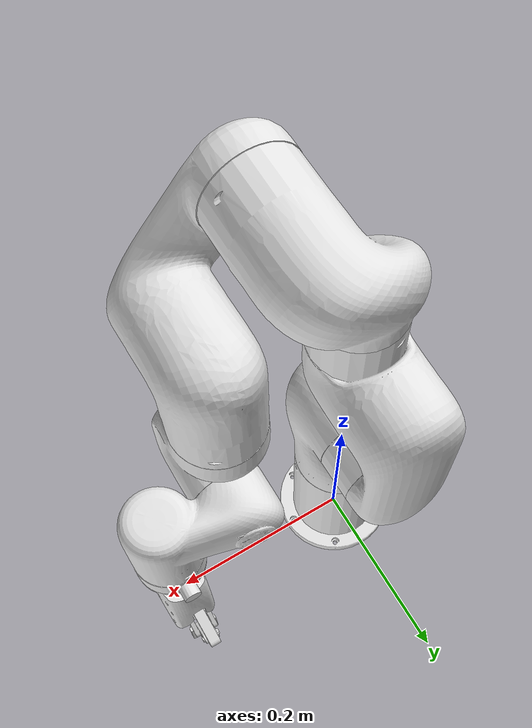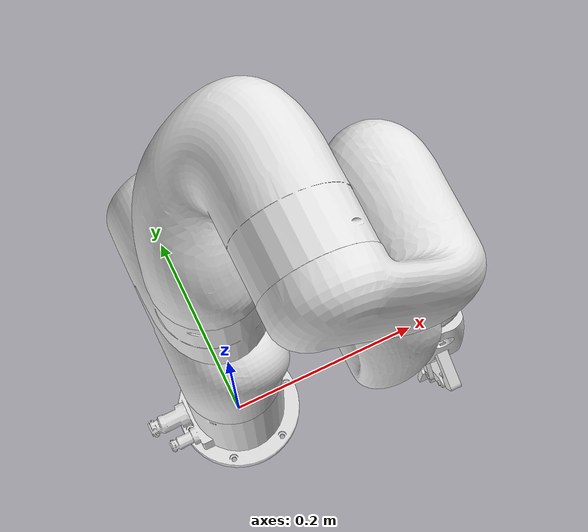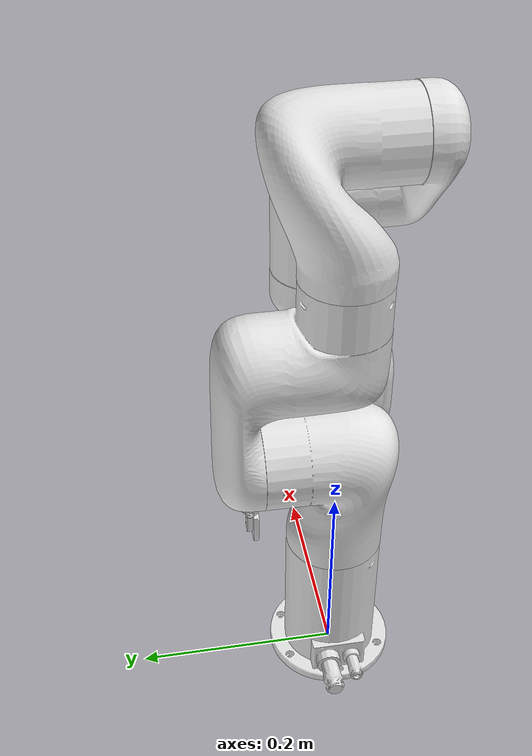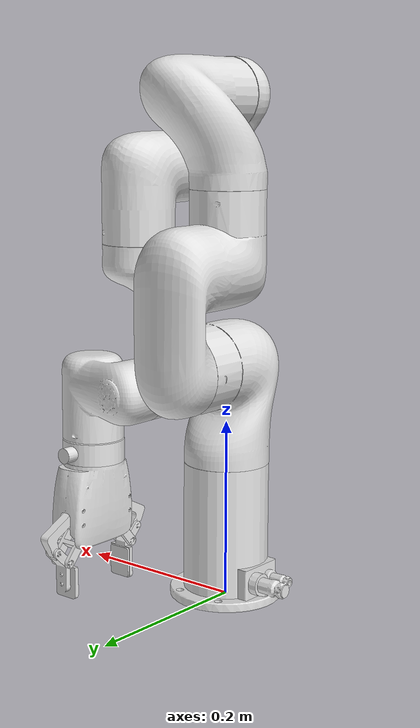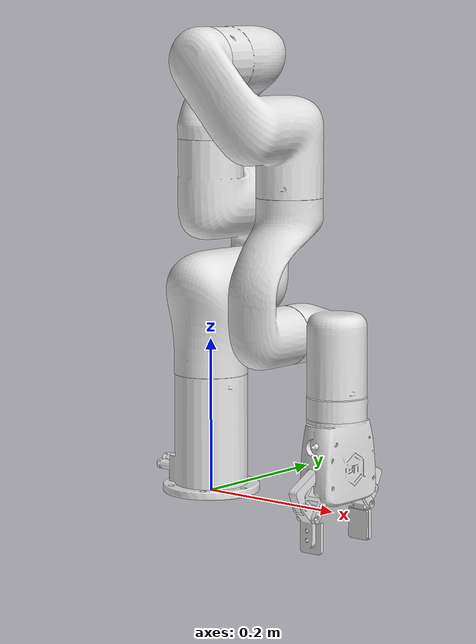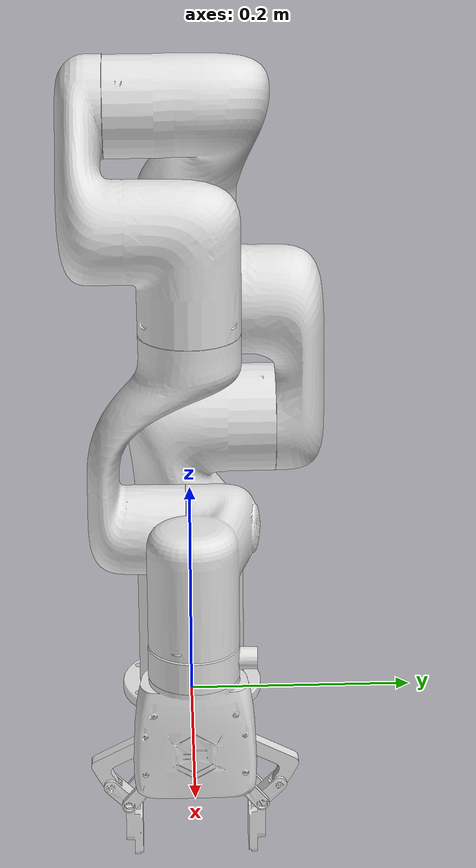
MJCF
<?xml version="1.0" ?>
<mujoco model="xarm7">
	<compiler meshdir="xarm7/meshes" texturedir="xarm7/textures" angle="radian" autolimits="true" balanceinertia="true" boundmass="0.000001" boundinertia="0.000001"/>
	<default>
		<default class="visual">
			<geom contype="0" conaffinity="0"/>
		</default>
		<default class="collision">
			<geom rgba=".9 .9 .9 1.0"/>
		</default>
	</default>
	<asset>
		<mesh name="link_base" file="stl/link_base.stl" scale="1.0 1.0 1.0"/>
		<mesh name="link1" file="stl/link1.stl" scale="1.0 1.0 1.0"/>
		<mesh name="link2" file="stl/link2.stl" scale="1.0 1.0 1.0"/>
		<mesh name="link3" file="stl/link3.stl" scale="1.0 1.0 1.0"/>
		<mesh name="link4" file="stl/link4.stl" scale="1.0 1.0 1.0"/>
		<mesh name="link5" file="stl/link5.stl" scale="1.0 1.0 1.0"/>
		<mesh name="link6" file="stl/link6.stl" scale="1.0 1.0 1.0"/>
		<mesh name="end_tool" file="stl/end_tool.stl" scale="1.0 1.0 1.0"/>
		<mesh name="base_link" file="stl/base_link.stl" scale="1.0 1.0 1.0"/>
		<mesh name="left_outer_knuckle" file="stl/left_outer_knuckle.stl" scale="1.0 1.0 1.0"/>
		<mesh name="left_finger" file="stl/left_finger.stl" scale="1.0 1.0 1.0"/>
		<mesh name="left_inner_knuckle" file="stl/left_inner_knuckle.stl" scale="1.0 1.0 1.0"/>
		<mesh name="right_outer_knuckle" file="stl/right_outer_knuckle.stl" scale="1.0 1.0 1.0"/>
		<mesh name="right_finger" file="stl/right_finger.stl" scale="1.0 1.0 1.0"/>
		<mesh name="right_inner_knuckle" file="stl/right_inner_knuckle.stl" scale="1.0 1.0 1.0"/>
		<material name="white" rgba="1.0 1.0 1.0 1.0" emission="0.0" specular="0.5"/>
		<material name="gray" rgba="0.753000020980835 0.753000020980835 0.753000020980835 1.0" emission="0.0" specular="0.5"/>
		<material name="black" rgba="0.14900000393390656 0.14900000393390656 0.14900000393390656 1.0" emission="0.0" specular="0.5"/>
	</asset>
	<worldbody>
		<body name="xarm7" pos="0.0 0.0 0.0" quat="1.0 0.0 0.0 0.0">
			<body name="link_base" pos="0.0 0.0 0.0" quat="1.0 0.0 0.0 0.0">
				<geom name="Geom_0" type="mesh" pos="-0.0023309208918362856 7.635034125996754e-05 0.06466086208820343" quat="0.724604606628418 0.018935956060886383 0.017714353278279305 0.6886768341064453" mesh="link_base" material="white" class="collision"/>
				<body name="link1" pos="0.0 0.0 0.2669999897480011" quat="1.0 0.0 0.0 0.0">
					<inertial mass="2.381999969482422" pos="-0.00019999999494757503 0.02905000001192093 -0.012330000288784504" quat="0.9789528846740723 -0.2027689814567566 -0.004416169598698616 -0.022726397961378098" diaginertia="0.005691269878298044 0.005333839915692806 0.002938650082796812"/>
					<geom name="Geom_1" type="mesh" pos="-0.00014185543113853782 0.007463847286999226 -0.02711421065032482" quat="0.9861190319061279 -0.16602441668510437 0.002235614927485585 -0.00031846127239987254" mesh="link1" material="white" class="collision"/>
					<joint name="joint1" type="hinge" pos="0.0 0.0 0.0" range="-6.28318977355957 6.28318977355957" axis="0.0 0.0 1.0"/>
					<body name="link2" pos="0.0 0.0 0.0" quat="0.7071067690849304 -0.7071067690849304 0.0 0.0">
						<inertial mass="1.86899995803833" pos="0.00022000000171829015 -0.12856000661849976 0.017349999397993088" quat="0.5019803047180176 0.864830493927002 -0.007788414601236582 0.004832852631807327" diaginertia="0.009598979726433754 0.009377170354127884 0.002013149904087186"/>
						<geom name="Geom_2" type="mesh" pos="-8.518074173480272e-05 -0.09124548733234406 0.0484553687274456" quat="0.46958431601524353 0.8828866481781006 -0.0012075769482180476 0.0005315205198712647" mesh="link2" material="white" class="collision"/>
						<joint name="joint2" type="hinge" pos="0.0 0.0 0.0" range="-2.059000015258789 2.094399929046631" axis="0.0 0.0 1.0"/>
						<body name="link3" pos="0.0 -0.2930000126361847 0.0" quat="0.7071067690849304 0.7071067690849304 0.0 0.0">
							<inertial mass="1.6382999420166016" pos="0.04659999907016754 -0.024630000814795494 -0.007679999805986881" quat="0.9138187170028687 0.28977492451667786 0.28148090839385986 -0.041645485907793045" diaginertia="0.003517210017889738 0.0029408899135887623 0.0019586801063269377"/>
							<geom name="Geom_3" type="mesh" pos="0.031160490587353706 0.0020180908031761646 -0.022566212341189384" quat="0.9348522424697876 0.15439170598983765 0.31362614035606384 0.06207319349050522" mesh="link3" material="white" class="collision"/>
							<joint name="joint3" type="hinge" pos="0.0 0.0 0.0" range="-6.28318977355957 6.28318977355957" axis="0.0 0.0 1.0"/>
							<body name="link4" pos="0.05249999836087227 0.0 0.0" quat="0.7071067690849304 0.7071067690849304 0.0 0.0">
								<inertial mass="1.7268999814987183" pos="0.07046999782323837 -0.11574999988079071 0.012000000104308128" quat="0.4221080541610718 0.852026104927063 -0.1260250210762024 0.2828320264816284" diaginertia="0.006571370176970959 0.006479479838162661 0.0018676300533115864"/>
								<geom name="Geom_4" type="mesh" pos="0.0589485689997673 -0.07610493153333664 0.04029048979282379" quat="0.47769883275032043 0.8121448159217834 0.32426926493644714 0.08410734683275223" mesh="link4" material="white" class="collision"/>
								<joint name="joint4" type="hinge" pos="0.0 0.0 0.0" range="-0.1919800043106079 3.927000045776367" axis="0.0 0.0 1.0"/>
								<body name="link5" pos="0.07750000059604645 -0.3425000011920929 0.0" quat="0.7071067690849304 0.7071067690849304 0.0 0.0">
									<inertial mass="1.3202999830245972" pos="-0.00031999999191612005 0.016039999201893806 -0.026000000536441803" quat="0.9993112087249756 -0.030445707961916924 0.0005770671414211392 0.021208204329013824" diaginertia="0.005347290076315403 0.004990759771317244 0.001348900026641786"/>
									<geom name="Geom_5" type="mesh" pos="-0.0001655187807045877 0.03179182857275009 -0.07229184359312057" quat="0.9894816875457764 -0.1444227695465088 0.0006865308969281614 0.008220445364713669" mesh="link5" material="white" class="collision"/>
									<joint name="joint5" type="hinge" pos="0.0 0.0 0.0" range="-6.28318977355957 6.28318977355957" axis="0.0 0.0 1.0"/>
									<body name="link6" pos="0.0 0.0 0.0" quat="0.7071067690849304 0.7071067690849304 0.0 0.0">
										<inertial mass="1.3250000476837158" pos="0.064690001308918 0.0327799990773201 0.021409999579191208" quat="-0.21767203509807587 0.7724190950393677 0.16258002817630768 0.574069082736969" diaginertia="0.0024542100727558136 0.0022164599504321814 0.0010727300541475415"/>
										<geom name="Geom_6" type="mesh" pos="0.048996806144714355 0.011248594149947166 0.00904772151261568" quat="-0.11064780503511429 0.7942664623260498 0.09746310114860535 0.5894054174423218" mesh="link6" material="white" class="collision"/>
										<joint name="joint6" type="hinge" pos="0.0 0.0 0.0" range="-1.6929700374603271 3.141590118408203" axis="0.0 0.0 1.0"/>
										<body name="link7" pos="0.07599999755620956 0.09700000286102295 0.0" quat="0.7071067690849304 -0.7071067690849304 0.0 0.0">
											<inertial mass="0.17000000178813934" pos="0.0 -0.006769999861717224 -0.010979999788105488" quat="0.48761221766471863 0.5120882391929626 -0.5120882391929626 0.48761221766471863" diaginertia="0.0001321760064456612 9.300000237999484e-05 5.852360118296929e-05"/>
											<geom name="Geom_7" type="mesh" pos="3.4268701654127653e-08 -0.0014353044098243117 -0.013516015373170376" quat="0.49949541687965393 0.5005040764808655 -0.5004957914352417 0.4995037019252777" mesh="end_tool" material="gray" class="collision"/>
											<joint name="joint7" type="hinge" pos="0.0 0.0 0.0" range="-6.28318977355957 6.28318977355957" axis="0.0 0.0 1.0"/>
											<body name="xarm_gripper_base_link" pos="0.0 0.0 0.0" quat="0.0 0.0 0.0 1.0">
												<inertial mass="0.5415599942207336" pos="-0.0006548900273628533 -0.0018496999982744455 0.04802799969911575" quat="0.9974032640457153 -0.07175122201442719 -0.006183601915836334 0.00047747913049533963" diaginertia="0.0004710929933935404 0.0003323070122860372 0.00025479900068603456"/>
												<geom name="Geom_8" type="mesh" pos="-0.0013675233349204063 0.00018071029626298696 0.04590832069516182" quat="0.99934321641922 0.017822450026869774 -0.031549274921417236 0.00034013341064564884" mesh="base_link" material="white" class="collision"/>
												<body name="left_inner_knuckle" pos="0.0 0.019999999552965164 0.07409799844026566" quat="1.0 0.0 0.0 0.0">
													<inertial mass="0.02301260083913803" pos="1.8660100522538414e-06 0.022046800702810287 0.026133500039577484" quat="0.6641393303871155 -0.24273212254047394 0.24271312355995178 0.664146363735199" diaginertia="8.342160072061233e-06 6.094900072639575e-06 2.7560099624679424e-06"/>
													<geom name="Geom_11" type="mesh" pos="2.847784708137624e-05 0.02092375047504902 0.024802643805742264" quat="0.6645216345787048 -0.24177679419517517 0.2436622679233551 0.6637647747993469" mesh="left_inner_knuckle" material="black" class="collision"/>
													<joint name="left_inner_knuckle_joint" type="hinge" pos="0.0 0.0 0.0" range="0.0 0.8500000238418579" axis="1.0 0.0 0.0"/>
												</body>
												<body name="right_inner_knuckle" pos="0.0 -0.019999999552965164 0.07409799844026566" quat="1.0 0.0 0.0 0.0">
													<inertial mass="0.023012999445199966" pos="1.866000047812122e-06 -0.022047000005841255 0.02613300085067749" quat="0.6641499400138855 0.24270197749137878 -0.24272097647190094 0.6641439199447632" diaginertia="8.342090040969197e-06 6.094900072639575e-06 2.7560099624679424e-06"/>
													<geom name="Geom_14" type="mesh" pos="-3.434382279010606e-06 -0.020921964198350906 0.02480097860097885" quat="0.6641914248466492 0.24258089065551758 -0.24283336102962494 0.6641055941581726" mesh="right_inner_knuckle" material="black" class="collision"/>
													<joint name="right_inner_knuckle_joint" type="hinge" pos="0.0 0.0 0.0" range="0.0 0.8500000238418579" axis="-1.0 0.0 0.0"/>
												</body>
												<body name="left_outer_knuckle" pos="0.0 0.03500000014901161 0.059098001569509506" quat="1.0 0.0 0.0 0.0">
													<inertial mass="0.03361799940466881" pos="0.0 0.02155900001525879 0.015181000344455242" quat="0.47788986563682556 0.8784197568893433 0.0 0.0" diaginertia="1.9110999346594326e-05 1.7908900190377608e-05 1.9016699752683053e-06"/>
													<geom name="Geom_9" type="mesh" pos="2.459128733978133e-11 0.017327455803751945 0.01510738953948021" quat="0.4820828437805176 0.8761256337165833 0.0 0.0" mesh="left_outer_knuckle" material="black" class="collision"/>
													<joint name="left_driver_joint" type="hinge" pos="0.0 0.0 0.0" range="0.0 0.8500000238418579" axis="1.0 0.0 0.0"/>
													<body name="left_finger" pos="0.0 0.035464998334646225 0.04203899949789047" quat="1.0 0.0 0.0 0.0">
														<inertial mass="0.0483039990067482" pos="0.0 -0.016412999480962753 0.0292579997330904" quat="0.6976343393325806 0.1153530552983284 -0.1153530552983284 0.6976343393325806" diaginertia="1.880369927675929e-05 1.749299917719327e-05 3.5679199754667934e-06"/>
														<geom name="Geom_10" type="mesh" pos="1.480761966377031e-05 -0.015549806877970695 0.028040098026394844" quat="0.6948176622390747 0.12783899903297424 -0.12892542779445648 0.6958906650543213" mesh="left_finger" material="black" class="collision"/>
														<joint name="left_finger_joint" type="hinge" pos="0.0 0.0 0.0" range="0.0 0.8500000238418579" axis="-1.0 0.0 0.0"/>
													</body>
												</body>
												<body name="right_outer_knuckle" pos="0.0 -0.03500000014901161 0.059098001569509506" quat="1.0 0.0 0.0 0.0">
													<inertial mass="0.03361799940466881" pos="0.0 -0.02155900001525879 0.015181000344455242" quat="0.8784197568893433 0.47788986563682556 0.0 0.0" diaginertia="1.9110999346594326e-05 1.7908900190377608e-05 1.9016699752683053e-06"/>
													<geom name="Geom_12" type="mesh" pos="-2.459128733978133e-11 -0.017327455803751945 0.01510738953948021" quat="0.8761256337165833 0.4820828437805176 0.0 0.0" mesh="right_outer_knuckle" material="black" class="collision"/>
													<joint name="right_driver_joint" type="hinge" pos="0.0 0.0 0.0" range="0.0 0.8500000238418579" axis="-1.0 0.0 0.0"/>
													<body name="right_finger" pos="0.0 -0.035464998334646225 0.04203899949789047" quat="1.0 0.0 0.0 0.0">
														<inertial mass="0.0483039990067482" pos="0.0 0.016412999480962753 0.0292579997330904" quat="0.6976338624954224 -0.1153559759259224 0.1153559759259224 0.6976338624954224" diaginertia="1.8803799321176484e-05 1.749299917719327e-05 3.56778991772444e-06"/>
														<geom name="Geom_13" type="mesh" pos="2.8375270630931482e-05 0.015532153658568859 0.028008582070469856" quat="0.6963784694671631 -0.12952396273612976 0.1274515837430954 0.6942886114120483" mesh="right_finger" material="black" class="collision"/>
														<joint name="right_finger_joint" type="hinge" pos="0.0 0.0 0.0" range="0.0 0.8500000238418579" axis="1.0 0.0 0.0"/>
													</body>
												</body>
											</body>
										</body>
									</body>
								</body>
							</body>
						</body>
					</body>
				</body>
			</body>
		</body>
	</worldbody>
	<equality>
		<joint name="Equality_2" joint1="left_driver_joint" joint2="right_driver_joint" polycoef="0.0 1.0 0.0 0.0 0.0"/>
	</equality>
</mujoco>
